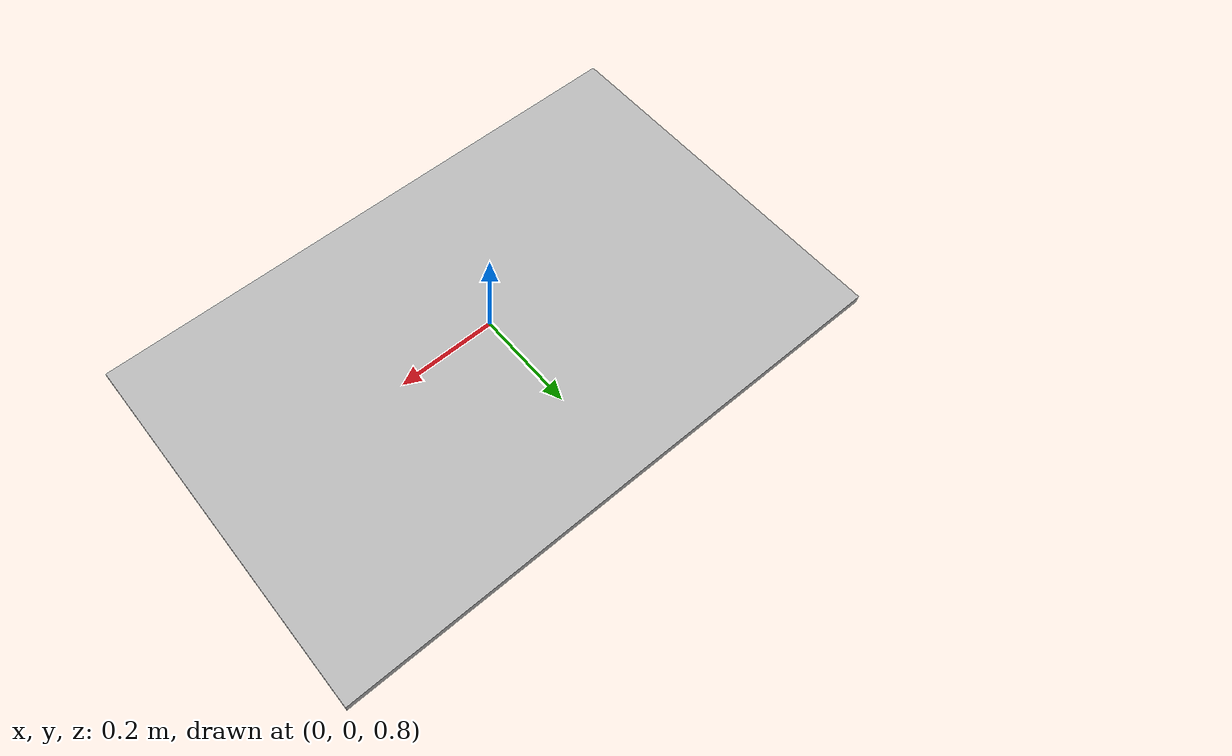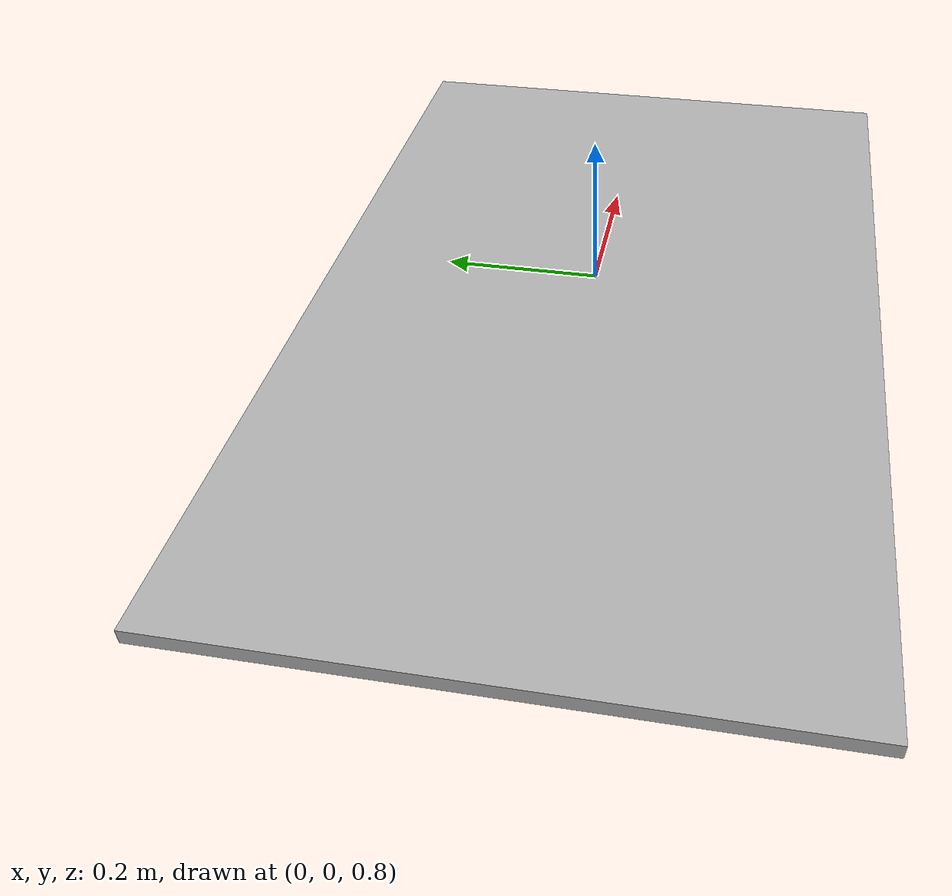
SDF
<?xml version="1.0"?>
<sdf version="1.6">
  <model name="reo2016/workbench">
    <link name="1_link">
      <collision name="1_col">
        <geometry>
          <box>
            <size>1.2 0.76 0.02</size>
          </box>
        </geometry>
      </collision>
      <visual name="1_vis">
        <geometry>
          <box>
            <size>1.2 0.76 0.02</size>
          </box>
        </geometry>
      </visual>
      <pose>0.0 0.0 0.75 0 0 0</pose>
    </link>
    <link name="on_top_of">
      <virtual_volume name="on_top_of_vv">
        <geometry>
          <box>
            <size>1.2 0.76 0.3</size>
          </box>
        </geometry>
        <pose>0.0 0.0 0.95 0 0 0</pose>
      </virtual_volume>
    </link>
    <static>true</static>
  </model>
</sdf>
